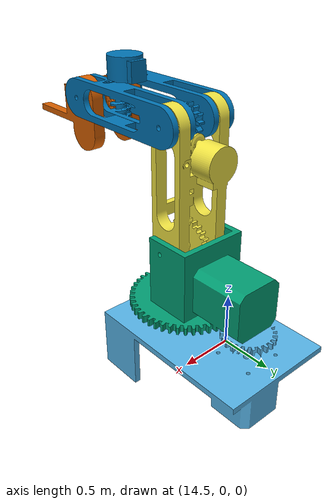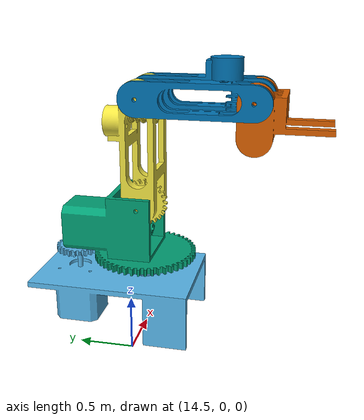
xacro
<?xml version="1.0" ?>
<robot xmlns:xacro="http://www.ros.org/wiki/xacro" name="robotarm">

    <xacro:arg name="is_ignition" default="false"/>
    <xacro:arg name="is_sim" default="true"/>

    <xacro:include filename="$(find robotarm_description)/urdf/robotarm.gazebo.xacro" />
    <xacro:include filename="$(find robotarm_description)/urdf/robotarm.ros2.control.xacro" />

    <xacro:property name="PI" value="3.14159" />
    <xacro:property name="effort" value="30.0" />
    <xacro:property name="velocity" value="10.0" />
    <xacro:macro name="default_inertial" params="mass">
        <inertial>
            <mass value="${mass}"/>
            <inertia ixx="1.0" ixy="0.0" ixz="0.0"
                iyy="1.0" iyz="0.0"
                izz="1.0"/>

        </inertial>
    </xacro:macro>

    <link name="world" /><!-- Add an anchor for the rest of the frame to stick to -->
    <link name="platform_link">
        <xacro:default_inertial mass="1.0" />
        <visual>
            <origin rpy="0 0 0" xyz="-0.0 -0.0 1.25" />
            <geometry>
                <mesh filename="package://robotarm_description/meshes/Platform.stl" scale="0.01 0.01 0.01"/>
            </geometry>
        </visual>
        <collision>
            <origin rpy="0 0 0" xyz="-0.0 -0.0 0" />
            <geometry>
                <mesh filename="package://robotarm_description/meshes/Platform.stl" scale="0.01 0.01 0.01"/>
            </geometry>
        </collision>
    </link>

    <joint name="virtual_joint" type="fixed">
        <parent link="world" />
        <child link="platform_link" />
        <origin ryp="0 0 0" xyz="15 0 0"/>
    </joint>

    <link name="platform_to_base">
        <xacro:default_inertial mass="1.0" />
        <visual>
            <origin rpy="0 0 0" xyz="-0.0 -0.0 0.95" />
            <geometry>
                <mesh filename="package://robotarm_description/meshes/Base.stl" scale="0.01 0.01 0.01"/>
            </geometry>
        </visual>
        <collision>
            <origin rpy="0 0 0" xyz="-0.0 -0.0 0" />
            <geometry>
                <mesh filename="package://robotarm_description/meshes/Base.stl" scale="0.01 0.01 0.01"/>
            </geometry>
        </collision>
    </link>

    <joint name="base" type="revolute">
        <parent link="platform_link" />
        <child link="platform_to_base" />
        <axis xyz="0 0 1" />
        <origin ryp="0 0 0" xyz="0 0 0.307"/>
        <limit lower="-15" upper="15" effort="${effort}" velocity="${velocity}"/> <!-- Radians = pi/2 -->
    </joint>

    <!-- ARM 1 -->

    <link name="base_arm_1">
        <xacro:default_inertial mass="1.0" />
        <visual>
            <origin rpy="0 0 0" xyz="-0.0 -0.0 -0.01" />
            <geometry>
                <mesh filename="package://robotarm_description/meshes/Arm1.stl" scale="0.01 0.01 0.01"/>
            </geometry>
        </visual>
        <collision>
            <origin rpy="0 0 0" xyz="-0.0 -0.0 -0.01" />
            <geometry>
                <mesh filename="package://robotarm_description/meshes/Arm1.stl" scale="0.01 0.01 0.01"/>
            </geometry>
        </collision>
    </link>

    <joint name="base_arm1" type="revolute">
        <parent link="platform_to_base" />
        <child link="base_arm_1" />
        <axis xyz="1 0 0" />
        <origin ryp="0 0 0" xyz="0 0 0.95"/>
        <limit lower="-5" upper="5" effort="${effort}" velocity="${velocity}"/> <!-- Radians = pi/2 -->
    </joint>

    <!-- ARM 2 -->

    <link name="arm_1_arm_2">
        <xacro:default_inertial mass="1.0" />
        <visual>
            <origin rpy="0 0 0" xyz="-0.0 0.007 -1.0" />
            <geometry>
                <mesh filename="package://robotarm_description/meshes/Arm2.stl" scale="0.01 0.01 0.01"/>
            </geometry>
        </visual>
        <collision>
            <origin rpy="0 0 0" xyz="-0.0 0.007 -1.0" />
            <geometry>
                <mesh filename="package://robotarm_description/meshes/Arm2.stl" scale="0.01 0.01 0.01"/>
            </geometry>
        </collision>
    </link>

    <joint name="arm1_arm2" type="revolute">
        <parent link="base_arm_1" />
        <child link="arm_1_arm_2" />
        <axis xyz="1 0 0" />
        <origin ryp="0 0 0" xyz="0 -0.0125 0.99"/>
        <limit lower="-5" upper="5" effort="${effort}" velocity="${velocity}"/> <!-- Radians = pi/2 -->
    </joint>

    <!-- PALLET FORKS -->

    <link name="arm_2_forks">
        <xacro:default_inertial mass="1.0" />
        <visual>
            <origin rpy="0 0 0" xyz="-0.0 1.0 -1.0" />
            <geometry>
                <mesh filename="package://robotarm_description/meshes/PalletForks.stl" scale="0.01 0.01 0.01"/>
            </geometry>
        </visual>
        <collision>
            <origin rpy="0 0 0" xyz="-0.0 1.0 -1.0" />
            <geometry>
                <mesh filename="package://robotarm_description/meshes/PalletForks.stl" scale="0.01 0.01 0.01"/>
            </geometry>
        </collision>
    </link>

    <joint name="arm2_forks" type="revolute">
        <parent link="arm_1_arm_2" />
        <child link="arm_2_forks" />
        <axis xyz="1 0 0" />
        <origin ryp="0 0 0" xyz="0 -1.0 0.0"/>
        <limit lower="-5" upper="5" effort="${effort}" velocity="${velocity}"/> <!-- Radians = pi/2 -->
    </joint>
</robot>
